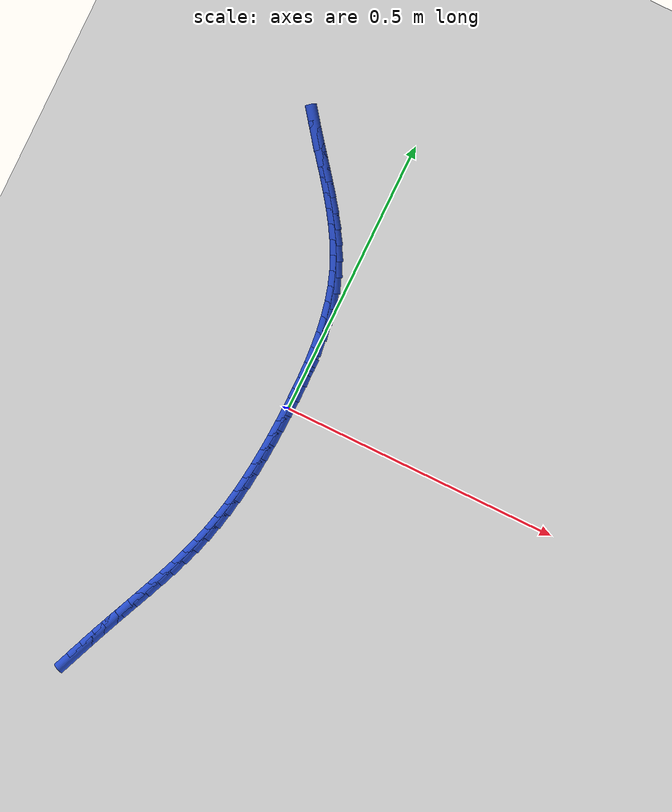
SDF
<sdf version="1.6">
 <world name="default">
  <model name="ground_plane">
   <static>1</static>
   <link name="link">
    <collision name="collision">
     <geometry><plane><normal>0 0 1</normal><size>100 100</size></plane></geometry>
     <surface><friction><ode><mu>100</mu><mu2>50</mu2></ode></friction></surface>
    </collision>
    <visual name="visual">
     <cast_shadows>0</cast_shadows>
     <geometry><plane><normal>0 0 1</normal><size>100 100</size></plane></geometry>
     <material>
      <script><uri>file://media/materials/scripts/gazebo.material</uri><name>Gazebo/WhiteGlow</name></script>
     </material>
    </visual>
   </link>
  </model>
  <model name="line">
   <link name="link_0">
    <pose>-1.8323016715005025e-17 -1.3877787807814457e-17 0.01 0 1.57 1.5553200753350904</pose>
    <collision name="collision">
     <geometry><cylinder><radius>0.01</radius><length>0.08</length></cylinder></geometry>
    </collision>
    <visual name="visual">
     <material>
      <script><name>Gazebo/Blue</name><uri>file://media/materials/scripts/gazebo.material</uri></script>
     </material>
     <geometry><cylinder><radius>0.01</radius><length>0.08</length></cylinder></geometry>
    </visual>
   </link>
   <link name="link_1">
    <pose>0.0004414915079881681 0.028524753601993698 0.01 0 1.57 -1.5662697597265813</pose>
    <collision name="collision">
     <geometry><cylinder><radius>0.01</radius><length>0.08</length></cylinder></geometry>
    </collision>
    <visual name="visual">
     <material>
      <script><name>Gazebo/Blue</name><uri>file://media/materials/scripts/gazebo.material</uri></script>
     </material>
     <geometry><cylinder><radius>0.01</radius><length>0.08</length></cylinder></geometry>
    </visual>
   </link>
   <link name="link_2">
    <pose>0.0003122872405282726 0.05706810291104114 0.01 0 1.57 -1.5401163370316076</pose>
    <collision name="collision">
     <geometry><cylinder><radius>0.01</radius><length>0.08</length></cylinder></geometry>
    </collision>
    <visual name="visual">
     <material>
      <script><name>Gazebo/Blue</name><uri>file://media/materials/scripts/gazebo.material</uri></script>
     </material>
     <geometry><cylinder><radius>0.01</radius><length>0.08</length></cylinder></geometry>
    </visual>
   </link>
   <link name="link_3">
    <pose>-0.0005608157806269807 0.08551756039779997 0.01 0 1.57 -1.5074954010092534</pose>
    <collision name="collision">
     <geometry><cylinder><radius>0.01</radius><length>0.08</length></cylinder></geometry>
    </collision>
    <visual name="visual">
     <material>
      <script><name>Gazebo/Blue</name><uri>file://media/materials/scripts/gazebo.material</uri></script>
     </material>
     <geometry><cylinder><radius>0.01</radius><length>0.08</length></cylinder></geometry>
    </visual>
   </link>
   <link name="link_4">
    <pose>-0.0023510205337248648 0.11376063853292764 0.01 0 1.57 -1.4680053422131805</pose>
    <collision name="collision">
     <geometry><cylinder><radius>0.01</radius><length>0.08</length></cylinder></geometry>
    </collision>
    <visual name="visual">
     <material>
      <script><name>Gazebo/Blue</name><uri>file://media/materials/scripts/gazebo.material</uri></script>
     </material>
     <geometry><cylinder><radius>0.01</radius><length>0.08</length></cylinder></geometry>
    </visual>
   </link>
   <link name="link_5">
    <pose>-0.005231529997012659 0.14168484978708182 0.01 0 1.57 -1.4211918492905573</pose>
    <collision name="collision">
     <geometry><cylinder><radius>0.01</radius><length>0.08</length></cylinder></geometry>
    </collision>
    <visual name="visual">
     <material>
      <script><name>Gazebo/Blue</name><uri>file://media/materials/scripts/gazebo.material</uri></script>
     </material>
     <geometry><cylinder><radius>0.01</radius><length>0.08</length></cylinder></geometry>
    </visual>
   </link>
   <link name="link_6">
    <pose>-0.009375547148737635 0.16917770663091997 0.01 0 1.57 -1.3665979591519102</pose>
    <collision name="collision">
     <geometry><cylinder><radius>0.01</radius><length>0.08</length></cylinder></geometry>
    </collision>
    <visual name="visual">
     <material>
      <script><name>Gazebo/Blue</name><uri>file://media/materials/scripts/gazebo.material</uri></script>
     </material>
     <geometry><cylinder><radius>0.01</radius><length>0.08</length></cylinder></geometry>
    </visual>
   </link>
   <link name="link_7">
    <pose>-0.014956274967147068 0.19612672153509964 0.01 0 1.57 -1.3038396258751415</pose>
    <collision name="collision">
     <geometry><cylinder><radius>0.01</radius><length>0.08</length></cylinder></geometry>
    </collision>
    <visual name="visual">
     <material>
      <script><name>Gazebo/Blue</name><uri>file://media/materials/scripts/gazebo.material</uri></script>
     </material>
     <geometry><cylinder><radius>0.01</radius><length>0.08</length></cylinder></geometry>
    </visual>
   </link>
   <link name="link_8">
    <pose>-0.022146916430488234 0.22241940697027843 0.01 0 1.57 -1.2327119643203222</pose>
    <collision name="collision">
     <geometry><cylinder><radius>0.01</radius><length>0.08</length></cylinder></geometry>
    </collision>
    <visual name="visual">
     <material>
      <script><name>Gazebo/Blue</name><uri>file://media/materials/scripts/gazebo.material</uri></script>
     </material>
     <geometry><cylinder><radius>0.01</radius><length>0.08</length></cylinder></geometry>
    </visual>
   </link>
   <link name="link_9">
    <pose>-0.03112067451700842 0.24794327540711397 0.01 0 1.57 -1.1561031268742572</pose>
    <collision name="collision">
     <geometry><cylinder><radius>0.01</radius><length>0.08</length></cylinder></geometry>
    </collision>
    <visual name="visual">
     <material>
      <script><name>Gazebo/Blue</name><uri>file://media/materials/scripts/gazebo.material</uri></script>
     </material>
     <geometry><cylinder><radius>0.01</radius><length>0.08</length></cylinder></geometry>
    </visual>
   </link>
   <link name="link_10">
    <pose>-0.041985241641865775 0.27262299803387424 0.01 0 1.57 -1.0867895096457891</pose>
    <collision name="collision">
     <geometry><cylinder><radius>0.01</radius><length>0.08</length></cylinder></geometry>
    </collision>
    <visual name="visual">
     <material>
      <script><name>Gazebo/Blue</name><uri>file://media/materials/scripts/gazebo.material</uri></script>
     </material>
     <geometry><cylinder><radius>0.01</radius><length>0.08</length></cylinder></geometry>
    </visual>
   </link>
   <link name="link_11">
    <pose>-0.05456178464393703 0.2965457682715059 0.01 0 1.57 -1.0287085036393466</pose>
    <collision name="collision">
     <geometry><cylinder><radius>0.01</radius><length>0.08</length></cylinder></geometry>
    </collision>
    <visual name="visual">
     <material>
      <script><name>Gazebo/Blue</name><uri>file://media/materials/scripts/gazebo.material</uri></script>
     </material>
     <geometry><cylinder><radius>0.01</radius><length>0.08</length></cylinder></geometry>
    </visual>
   </link>
   <link name="link_12">
    <pose>-0.06859315686610178 0.3198432003022136 0.01 0 1.57 -0.9819871982175743</pose>
    <collision name="collision">
     <geometry><cylinder><radius>0.01</radius><length>0.08</length></cylinder></geometry>
    </collision>
    <visual name="visual">
     <material>
      <script><name>Gazebo/Blue</name><uri>file://media/materials/scripts/gazebo.material</uri></script>
     </material>
     <geometry><cylinder><radius>0.01</radius><length>0.08</length></cylinder></geometry>
    </visual>
   </link>
   <link name="link_13">
    <pose>-0.0838222097610074 0.3426469093803737 0.01 0 1.57 -0.9464319955718069</pose>
    <collision name="collision">
     <geometry><cylinder><radius>0.01</radius><length>0.08</length></cylinder></geometry>
    </collision>
    <visual name="visual">
     <material>
      <script><name>Gazebo/Blue</name><uri>file://media/materials/scripts/gazebo.material</uri></script>
     </material>
     <geometry><cylinder><radius>0.01</radius><length>0.08</length></cylinder></geometry>
    </visual>
   </link>
   <link name="link_14">
    <pose>-0.09999179478130135 0.365088510760363 0.01 0 1.57 -0.9217104200919956</pose>
    <collision name="collision">
     <geometry><cylinder><radius>0.01</radius><length>0.08</length></cylinder></geometry>
    </collision>
    <visual name="visual">
     <material>
      <script><name>Gazebo/Blue</name><uri>file://media/materials/scripts/gazebo.material</uri></script>
     </material>
     <geometry><cylinder><radius>0.01</radius><length>0.08</length></cylinder></geometry>
    </visual>
   </link>
   <link name="link_15">
    <pose>-0.11684476337963115 0.3872996196965584 0.01 0 1.57 -0.9074803771943228</pose>
    <collision name="collision">
     <geometry><cylinder><radius>0.01</radius><length>0.08</length></cylinder></geometry>
    </collision>
    <visual name="visual">
     <material>
      <script><name>Gazebo/Blue</name><uri>file://media/materials/scripts/gazebo.material</uri></script>
     </material>
     <geometry><cylinder><radius>0.01</radius><length>0.08</length></cylinder></geometry>
    </visual>
   </link>
   <link name="link_16">
    <pose>-0.13412396700864423 0.4094118514433362 0.01 0 1.57 -0.9034696263075276</pose>
    <collision name="collision">
     <geometry><cylinder><radius>0.01</radius><length>0.08</length></cylinder></geometry>
    </collision>
    <visual name="visual">
     <material>
      <script><name>Gazebo/Blue</name><uri>file://media/materials/scripts/gazebo.material</uri></script>
     </material>
     <geometry><cylinder><radius>0.01</radius><length>0.08</length></cylinder></geometry>
    </visual>
   </link>
   <link name="link_17">
    <pose>-0.15157225712098804 0.4315568212550734 0.01 0 1.57 -0.9095149041295618</pose>
    <collision name="collision">
     <geometry><cylinder><radius>0.01</radius><length>0.08</length></cylinder></geometry>
    </collision>
    <visual name="visual">
     <material>
      <script><name>Gazebo/Blue</name><uri>file://media/materials/scripts/gazebo.material</uri></script>
     </material>
     <geometry><cylinder><radius>0.01</radius><length>0.08</length></cylinder></geometry>
    </visual>
   </link>
   <link name="link_18">
    <pose>-0.1689324851693101 0.45386614438614653 0.01 0 1.57 -0.9255690504939411</pose>
    <collision name="collision">
     <geometry><cylinder><radius>0.01</radius><length>0.08</length></cylinder></geometry>
    </collision>
    <visual name="visual">
     <material>
      <script><name>Gazebo/Blue</name><uri>file://media/materials/scripts/gazebo.material</uri></script>
     </material>
     <geometry><cylinder><radius>0.01</radius><length>0.08</length></cylinder></geometry>
    </visual>
   </link>
   <link name="link_230">
    <pose>-0.1451758291399937 -0.5338836221318753 0.01 0 1.57 1.1832904163515057</pose>
    <collision name="collision">
     <geometry><cylinder><radius>0.01</radius><length>0.08</length></cylinder></geometry>
    </collision>
    <visual name="visual">
     <material>
      <script><name>Gazebo/Blue</name><uri>file://media/materials/scripts/gazebo.material</uri></script>
     </material>
     <geometry><cylinder><radius>0.01</radius><length>0.08</length></cylinder></geometry>
    </visual>
   </link>
   <link name="link_231">
    <pose>-0.13415534528907305 -0.5068820556366326 0.01 0 1.57 1.1759620161409094</pose>
    <collision name="collision">
     <geometry><cylinder><radius>0.01</radius><length>0.08</length></cylinder></geometry>
    </collision>
    <visual name="visual">
     <material>
      <script><name>Gazebo/Blue</name><uri>file://media/materials/scripts/gazebo.material</uri></script>
     </material>
     <geometry><cylinder><radius>0.01</radius><length>0.08</length></cylinder></geometry>
    </visual>
   </link>
   <link name="link_232">
    <pose>-0.12302597870682336 -0.480174824953065 0.01 0 1.57 1.165441739492245</pose>
    <collision name="collision">
     <geometry><cylinder><radius>0.01</radius><length>0.08</length></cylinder></geometry>
    </collision>
    <visual name="visual">
     <material>
      <script><name>Gazebo/Blue</name><uri>file://media/materials/scripts/gazebo.material</uri></script>
     </material>
     <geometry><cylinder><radius>0.01</radius><length>0.08</length></cylinder></geometry>
    </visual>
   </link>
   <link name="link_233">
    <pose>-0.11173120873629358 -0.45385401195302605 0.01 0 1.57 1.1589685738182938</pose>
    <collision name="collision">
     <geometry><cylinder><radius>0.01</radius><length>0.08</length></cylinder></geometry>
    </collision>
    <visual name="visual">
     <material>
      <script><name>Gazebo/Blue</name><uri>file://media/materials/scripts/gazebo.material</uri></script>
     </material>
     <geometry><cylinder><radius>0.01</radius><length>0.08</length></cylinder></geometry>
    </visual>
   </link>
   <link name="link_234">
    <pose>-0.10037854449392136 -0.42786383477067635 0.01 0 1.57 1.158229967231203</pose>
    <collision name="collision">
     <geometry><cylinder><radius>0.01</radius><length>0.08</length></cylinder></geometry>
    </collision>
    <visual name="visual">
     <material>
      <script><name>Gazebo/Blue</name><uri>file://media/materials/scripts/gazebo.material</uri></script>
     </material>
     <geometry><cylinder><radius>0.01</radius><length>0.08</length></cylinder></geometry>
    </visual>
   </link>
   <link name="link_235">
    <pose>-0.0891097844778547 -0.4021176015654917 0.01 0 1.57 1.1633865119070526</pose>
    <collision name="collision">
     <geometry><cylinder><radius>0.01</radius><length>0.08</length></cylinder></geometry>
    </collision>
    <visual name="visual">
     <material>
      <script><name>Gazebo/Blue</name><uri>file://media/materials/scripts/gazebo.material</uri></script>
     </material>
     <geometry><cylinder><radius>0.01</radius><length>0.08</length></cylinder></geometry>
    </visual>
   </link>
   <link name="link_236">
    <pose>-0.07806672718624157 -0.37652862049694796 0.01 0 1.57 1.1745742552331893</pose>
    <collision name="collision">
     <geometry><cylinder><radius>0.01</radius><length>0.08</length></cylinder></geometry>
    </collision>
    <visual name="visual">
     <material>
      <script><name>Gazebo/Blue</name><uri>file://media/materials/scripts/gazebo.material</uri></script>
     </material>
     <geometry><cylinder><radius>0.01</radius><length>0.08</length></cylinder></geometry>
    </visual>
   </link>
   <link name="link_237">
    <pose>-0.06739117111722999 -0.3510101997245211 0.01 0 1.57 1.1918968024709202</pose>
    <collision name="collision">
     <geometry><cylinder><radius>0.01</radius><length>0.08</length></cylinder></geometry>
    </collision>
    <visual name="visual">
     <material>
      <script><name>Gazebo/Blue</name><uri>file://media/materials/scripts/gazebo.material</uri></script>
     </material>
     <geometry><cylinder><radius>0.01</radius><length>0.08</length></cylinder></geometry>
    </visual>
   </link>
   <link name="link_238">
    <pose>-0.05722491476896794 -0.3254756474076867 0.01 0 1.57 1.2154105387606025</pose>
    <collision name="collision">
     <geometry><cylinder><radius>0.01</radius><length>0.08</length></cylinder></geometry>
    </collision>
    <visual name="visual">
     <material>
      <script><name>Gazebo/Blue</name><uri>file://media/materials/scripts/gazebo.material</uri></script>
     </material>
     <geometry><cylinder><radius>0.01</radius><length>0.08</length></cylinder></geometry>
    </visual>
   </link>
   <link name="link_239">
    <pose>-0.04770975663960343 -0.2998382717059209 0.01 0 1.57 1.245102849207625</pose>
    <collision name="collision">
     <geometry><cylinder><radius>0.01</radius><length>0.08</length></cylinder></geometry>
    </collision>
    <visual name="visual">
     <material>
      <script><name>Gazebo/Blue</name><uri>file://media/materials/scripts/gazebo.material</uri></script>
     </material>
     <geometry><cylinder><radius>0.01</radius><length>0.08</length></cylinder></geometry>
    </visual>
   </link>
   <link name="link_240">
    <pose>-0.038987495227284695 -0.2740113807787003 0.01 0 1.57 1.2808642521714613</pose>
    <collision name="collision">
     <geometry><cylinder><radius>0.01</radius><length>0.08</length></cylinder></geometry>
    </collision>
    <visual name="visual">
     <material>
      <script><name>Gazebo/Blue</name><uri>file://media/materials/scripts/gazebo.material</uri></script>
     </material>
     <geometry><cylinder><radius>0.01</radius><length>0.08</length></cylinder></geometry>
    </visual>
   </link>
   <link name="link_241">
    <pose>-0.031199928079107757 -0.2479082832777815 0.01 0 1.57 1.3208741520505054</pose>
    <collision name="collision">
     <geometry><cylinder><radius>0.01</radius><length>0.08</length></cylinder></geometry>
    </collision>
    <visual name="visual">
     <material>
      <script><name>Gazebo/Blue</name><uri>file://media/materials/scripts/gazebo.material</uri></script>
     </material>
     <geometry><cylinder><radius>0.01</radius><length>0.08</length></cylinder></geometry>
    </visual>
   </link>
   <link name="link_242">
    <pose>-0.024449450085150273 -0.22146268342062667 0.01 0 1.57 1.3591092392136033</pose>
    <collision name="collision">
     <geometry><cylinder><radius>0.01</radius><length>0.08</length></cylinder></geometry>
    </collision>
    <visual name="visual">
     <material>
      <script><name>Gazebo/Blue</name><uri>file://media/materials/scripts/gazebo.material</uri></script>
     </material>
     <geometry><cylinder><radius>0.01</radius><length>0.08</length></cylinder></geometry>
    </visual>
   </link>
   <link name="link_243">
    <pose>-0.01869429364005165 -0.19468290667793345 0.01 0 1.57 1.3941833713529863</pose>
    <collision name="collision">
     <geometry><cylinder><radius>0.01</radius><length>0.08</length></cylinder></geometry>
    </collision>
    <visual name="visual">
     <material>
      <script><name>Gazebo/Blue</name><uri>file://media/materials/scripts/gazebo.material</uri></script>
     </material>
     <geometry><cylinder><radius>0.01</radius><length>0.08</length></cylinder></geometry>
    </visual>
   </link>
   <link name="link_244">
    <pose>-0.013859730149854648 -0.16759433975584473 0.01 0 1.57 1.4260928144225504</pose>
    <collision name="collision">
     <geometry><cylinder><radius>0.01</radius><length>0.08</length></cylinder></geometry>
    </collision>
    <visual name="visual">
     <material>
      <script><name>Gazebo/Blue</name><uri>file://media/materials/scripts/gazebo.material</uri></script>
     </material>
     <geometry><cylinder><radius>0.01</radius><length>0.08</length></cylinder></geometry>
    </visual>
   </link>
   <link name="link_245">
    <pose>-0.009871031020601998 -0.14022236936050314 0.01 0 1.57 1.4548666285566623</pose>
    <collision name="collision">
     <geometry><cylinder><radius>0.01</radius><length>0.08</length></cylinder></geometry>
    </collision>
    <visual name="visual">
     <material>
      <script><name>Gazebo/Blue</name><uri>file://media/materials/scripts/gazebo.material</uri></script>
     </material>
     <geometry><cylinder><radius>0.01</radius><length>0.08</length></cylinder></geometry>
    </visual>
   </link>
   <link name="link_246">
    <pose>-0.0066534676583364415 -0.11259238219805157 0.01 0 1.57 1.4805568116113126</pose>
    <collision name="collision">
     <geometry><cylinder><radius>0.01</radius><length>0.08</length></cylinder></geometry>
    </collision>
    <visual name="visual">
     <material>
      <script><name>Gazebo/Blue</name><uri>file://media/materials/scripts/gazebo.material</uri></script>
     </material>
     <geometry><cylinder><radius>0.01</radius><length>0.08</length></cylinder></geometry>
    </visual>
   </link>
   <link name="link_247">
    <pose>-0.004132311469100726 -0.08472976497463272 0.01 0 1.57 1.5032296855545952</pose>
    <collision name="collision">
     <geometry><cylinder><radius>0.01</radius><length>0.08</length></cylinder></geometry>
    </collision>
    <visual name="visual">
     <material>
      <script><name>Gazebo/Blue</name><uri>file://media/materials/scripts/gazebo.material</uri></script>
     </material>
     <geometry><cylinder><radius>0.01</radius><length>0.08</length></cylinder></geometry>
    </visual>
   </link>
   <link name="link_248">
    <pose>-0.00223283385893759 -0.05665990439638934 0.01 0 1.57 1.5229586774818664</pose>
    <collision name="collision">
     <geometry><cylinder><radius>0.01</radius><length>0.08</length></cylinder></geometry>
    </collision>
    <visual name="visual">
     <material>
      <script><name>Gazebo/Blue</name><uri>file://media/materials/scripts/gazebo.material</uri></script>
     </material>
     <geometry><cylinder><radius>0.01</radius><length>0.08</length></cylinder></geometry>
    </visual>
   </link>
   <link name="link_249">
    <pose>-0.000880306233889776 -0.02840818716946424 0.01 0 1.57 1.5398184744602166</pose>
    <collision name="collision">
     <geometry><cylinder><radius>0.01</radius><length>0.08</length></cylinder></geometry>
    </collision>
    <visual name="visual">
     <material>
      <script><name>Gazebo/Blue</name><uri>file://media/materials/scripts/gazebo.material</uri></script>
     </material>
     <geometry><cylinder><radius>0.01</radius><length>0.08</length></cylinder></geometry>
    </visual>
   </link>
   <link name="link_250">
    <pose>-2.7430314963883262e-17 -1.457167719820518e-16 0.01 0 1.57 1.5538804289118742</pose>
    <collision name="collision">
     <geometry><cylinder><radius>0.01</radius><length>0.08</length></cylinder></geometry>
    </collision>
    <visual name="visual">
     <material>
      <script><name>Gazebo/Blue</name><uri>file://media/materials/scripts/gazebo.material</uri></script>
     </material>
     <geometry><cylinder><radius>0.01</radius><length>0.08</length></cylinder></geometry>
    </visual>
   </link>
   <link name="link_251">
    <pose>0.0004828134366889152 0.028539270405860184 0.01 0 1.57 1.5652090427062035</pose>
    <collision name="collision">
     <geometry><cylinder><radius>0.01</radius><length>0.08</length></cylinder></geometry>
    </collision>
    <visual name="visual">
     <material>
      <script><name>Gazebo/Blue</name><uri>file://media/materials/scripts/gazebo.material</uri></script>
     </material>
     <geometry><cylinder><radius>0.01</radius><length>0.08</length></cylinder></geometry>
    </visual>
   </link>
   <link name="link_252">
    <pose>0.0006428626701343101 0.05718423734197397 0.01 0 1.57 1.5595548445251335</pose>
    <collision name="collision">
     <geometry><cylinder><radius>0.01</radius><length>0.08</length></cylinder></geometry>
    </collision>
    <visual name="visual">
     <material>
      <script><name>Gazebo/Blue</name><uri>file://media/materials/scripts/gazebo.material</uri></script>
     </material>
     <geometry><cylinder><radius>0.01</radius><length>0.08</length></cylinder></geometry>
    </visual>
   </link>
  </model>
 </world>
</sdf>
